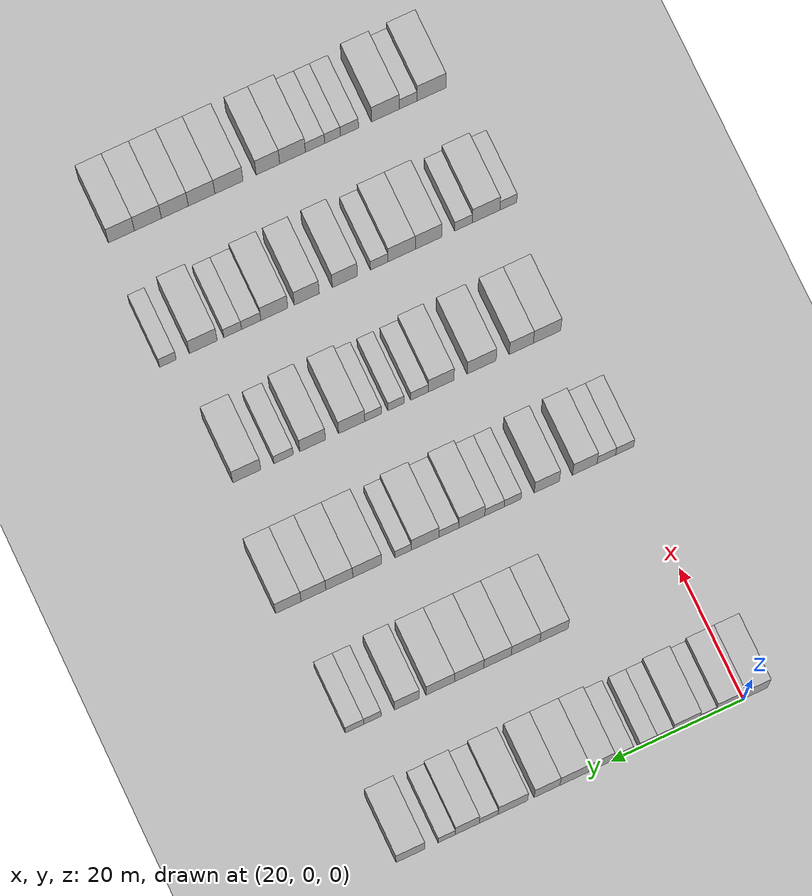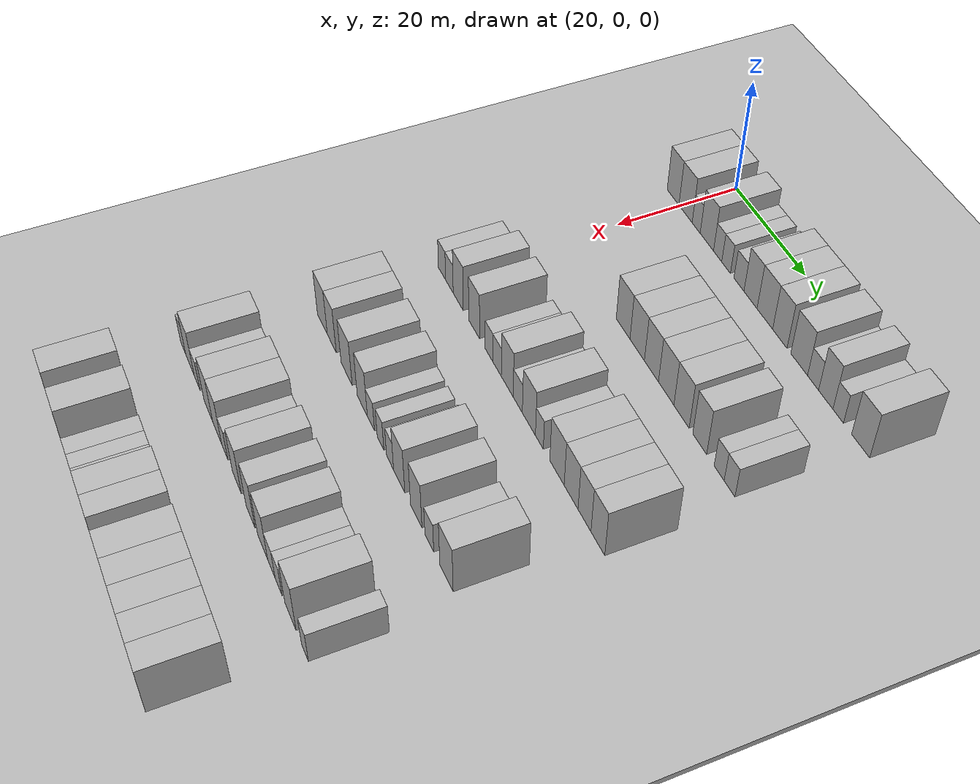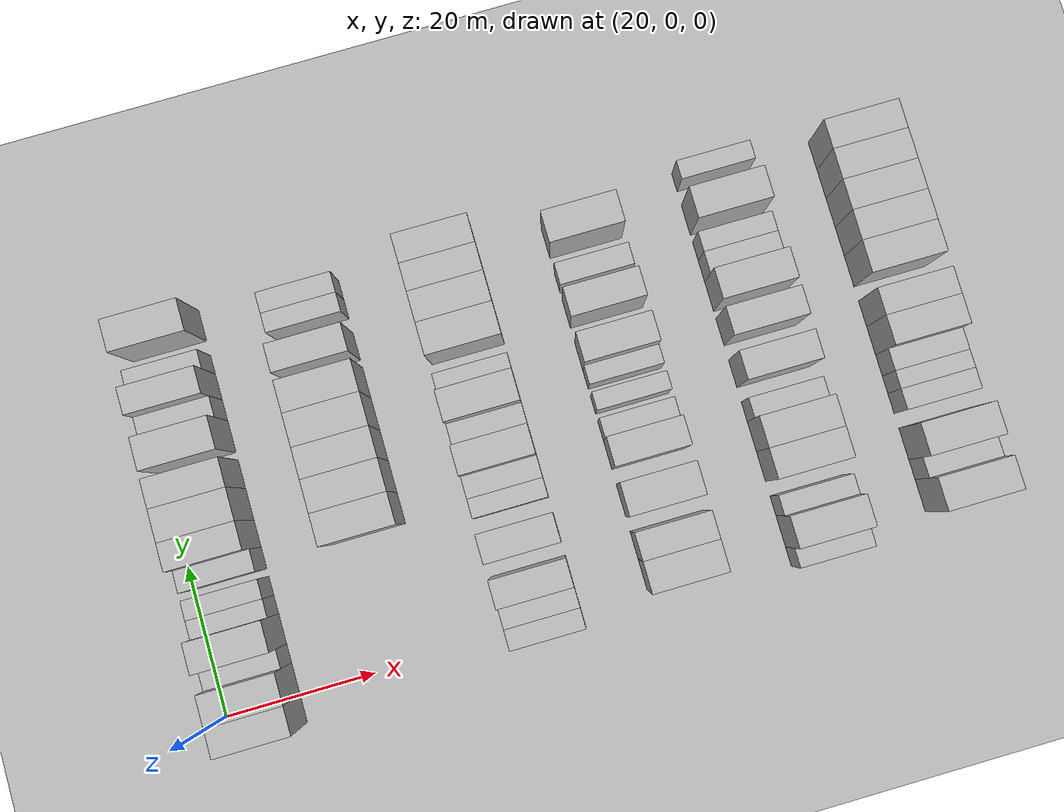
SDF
<sdf version="1.6">
 <world name="default">
  <include><name>ground_plane_1</name><uri>model://HANNAS_ground_plane</uri></include>
  <include>
   <name>ground_plane_2</name>
   <uri>model://HANNAS_ground_plane</uri>
   <pose>100 0 0  0 0 0</pose>
  </include>
  <model name="building_88">
   <static>1</static>
   <pose>25.0000 -1.7115 0 0.000000 0.000000 0.000000</pose>
   <link name="link">
    <pose>0 0 4.50 0 0 0</pose>
    <collision name="collision"><geometry><box><size>10.0000 3.7810 9.0000</size></box></geometry></collision>
    <visual name="visual">
     <cast_shadows>0</cast_shadows>
     <geometry><box><size>10.0000 3.7810 9.0000</size></box></geometry>
     <material>
      <script>
       <uri>model://HANNAS_wall/materials/scripts</uri>
       <uri>model://HANNAS_wall/materials/textures</uri>
       <name>vrc/HANNAS_wall</name>
      </script>
     </material>
    </visual>
   </link>
  </model>
  <model name="building_89">
   <static>1</static>
   <pose>25.0000 2.2634 0 0.000000 0.000000 0.000000</pose>
   <link name="link">
    <pose>0 0 4.50 0 0 0</pose>
    <collision name="collision"><geometry><box><size>10.0000 4.1690 9.0000</size></box></geometry></collision>
    <visual name="visual">
     <cast_shadows>0</cast_shadows>
     <geometry><box><size>10.0000 4.1690 9.0000</size></box></geometry>
     <material>
      <script>
       <uri>model://HANNAS_wall/materials/scripts</uri>
       <uri>model://HANNAS_wall/materials/textures</uri>
       <name>vrc/HANNAS_wall</name>
      </script>
     </material>
    </visual>
   </link>
  </model>
  <model name="building_90">
   <static>1</static>
   <pose>25.0000 5.5895 0 0.000000 0.000000 0.000000</pose>
   <link name="link">
    <pose>0 0 3.00 0 0 0</pose>
    <collision name="collision"><geometry><box><size>10.0000 2.4832 6.0000</size></box></geometry></collision>
    <visual name="visual">
     <cast_shadows>0</cast_shadows>
     <geometry><box><size>10.0000 2.4832 6.0000</size></box></geometry>
     <material>
      <script>
       <uri>model://HANNAS_wall/materials/scripts</uri>
       <uri>model://HANNAS_wall/materials/textures</uri>
       <name>vrc/HANNAS_wall</name>
      </script>
     </material>
    </visual>
   </link>
  </model>
  <model name="building_91">
   <static>1</static>
   <pose>25.0000 8.8632 0 0.000000 0.000000 0.000000</pose>
   <link name="link">
    <pose>0 0 4.50 0 0 0</pose>
    <collision name="collision"><geometry><box><size>10.0000 4.0643 9.0000</size></box></geometry></collision>
    <visual name="visual">
     <cast_shadows>0</cast_shadows>
     <geometry><box><size>10.0000 4.0643 9.0000</size></box></geometry>
     <material>
      <script>
       <uri>model://HANNAS_wall/materials/scripts</uri>
       <uri>model://HANNAS_wall/materials/textures</uri>
       <name>vrc/HANNAS_wall</name>
      </script>
     </material>
    </visual>
   </link>
  </model>
  <model name="building_92">
   <static>1</static>
   <pose>25.0000 12.1231 0 0.000000 0.000000 0.000000</pose>
   <link name="link">
    <pose>0 0 3.00 0 0 0</pose>
    <collision name="collision"><geometry><box><size>10.0000 2.4555 6.0000</size></box></geometry></collision>
    <visual name="visual">
     <cast_shadows>0</cast_shadows>
     <geometry><box><size>10.0000 2.4555 6.0000</size></box></geometry>
     <material>
      <script>
       <uri>model://HANNAS_wall/materials/scripts</uri>
       <uri>model://HANNAS_wall/materials/textures</uri>
       <name>vrc/HANNAS_wall</name>
      </script>
     </material>
    </visual>
   </link>
  </model>
  <model name="building_93">
   <static>1</static>
   <pose>25.0000 14.6333 0 0.000000 0.000000 0.000000</pose>
   <link name="link">
    <pose>0 0 3.00 0 0 0</pose>
    <collision name="collision"><geometry><box><size>10.0000 2.5648 6.0000</size></box></geometry></collision>
    <visual name="visual">
     <cast_shadows>0</cast_shadows>
     <geometry><box><size>10.0000 2.5648 6.0000</size></box></geometry>
     <material>
      <script>
       <uri>model://HANNAS_wall/materials/scripts</uri>
       <uri>model://HANNAS_wall/materials/textures</uri>
       <name>vrc/HANNAS_wall</name>
      </script>
     </material>
    </visual>
   </link>
  </model>
  <model name="building_94">
   <static>1</static>
   <pose>25.0000 18.3720 0 0.000000 0.000000 0.000000</pose>
   <link name="link">
    <pose>0 0 3.00 0 0 0</pose>
    <collision name="collision"><geometry><box><size>10.0000 2.9128 6.0000</size></box></geometry></collision>
    <visual name="visual">
     <cast_shadows>0</cast_shadows>
     <geometry><box><size>10.0000 2.9128 6.0000</size></box></geometry>
     <material>
      <script>
       <uri>model://HANNAS_wall/materials/scripts</uri>
       <uri>model://HANNAS_wall/materials/textures</uri>
       <name>vrc/HANNAS_wall</name>
      </script>
     </material>
    </visual>
   </link>
  </model>
  <model name="building_95">
   <static>1</static>
   <pose>25.0000 21.6835 0 0.000000 0.000000 0.000000</pose>
   <link name="link">
    <pose>0 0 4.50 0 0 0</pose>
    <collision name="collision"><geometry><box><size>10.0000 3.7102 9.0000</size></box></geometry></collision>
    <visual name="visual">
     <cast_shadows>0</cast_shadows>
     <geometry><box><size>10.0000 3.7102 9.0000</size></box></geometry>
     <material>
      <script>
       <uri>model://HANNAS_wall/materials/scripts</uri>
       <uri>model://HANNAS_wall/materials/textures</uri>
       <name>vrc/HANNAS_wall</name>
      </script>
     </material>
    </visual>
   </link>
  </model>
  <model name="building_96">
   <static>1</static>
   <pose>25.0000 25.7046 0 0.000000 0.000000 0.000000</pose>
   <link name="link">
    <pose>0 0 4.50 0 0 0</pose>
    <collision name="collision"><geometry><box><size>10.0000 4.3320 9.0000</size></box></geometry></collision>
    <visual name="visual">
     <cast_shadows>0</cast_shadows>
     <geometry><box><size>10.0000 4.3320 9.0000</size></box></geometry>
     <material>
      <script>
       <uri>model://HANNAS_wall/materials/scripts</uri>
       <uri>model://HANNAS_wall/materials/textures</uri>
       <name>vrc/HANNAS_wall</name>
      </script>
     </material>
    </visual>
   </link>
  </model>
  <model name="building_97">
   <static>1</static>
   <pose>25.0000 29.8140 0 0.000000 0.000000 0.000000</pose>
   <link name="link">
    <pose>0 0 4.50 0 0 0</pose>
    <collision name="collision"><geometry><box><size>10.0000 3.8866 9.0000</size></box></geometry></collision>
    <visual name="visual">
     <cast_shadows>0</cast_shadows>
     <geometry><box><size>10.0000 3.8866 9.0000</size></box></geometry>
     <material>
      <script>
       <uri>model://HANNAS_wall/materials/scripts</uri>
       <uri>model://HANNAS_wall/materials/textures</uri>
       <name>vrc/HANNAS_wall</name>
      </script>
     </material>
    </visual>
   </link>
  </model>
  <model name="building_98">
   <static>1</static>
   <pose>25.0000 34.9618 0 0.000000 0.000000 0.000000</pose>
   <link name="link">
    <pose>0 0 4.50 0 0 0</pose>
    <collision name="collision"><geometry><box><size>10.0000 4.4091 9.0000</size></box></geometry></collision>
    <visual name="visual">
     <cast_shadows>0</cast_shadows>
     <geometry><box><size>10.0000 4.4091 9.0000</size></box></geometry>
     <material>
      <script>
       <uri>model://HANNAS_wall/materials/scripts</uri>
       <uri>model://HANNAS_wall/materials/textures</uri>
       <name>vrc/HANNAS_wall</name>
      </script>
     </material>
    </visual>
   </link>
  </model>
  <model name="building_99">
   <static>1</static>
   <pose>25.0000 38.5921 0 0.000000 0.000000 0.000000</pose>
   <link name="link">
    <pose>0 0 3.00 0 0 0</pose>
    <collision name="collision"><geometry><box><size>10.0000 2.8514 6.0000</size></box></geometry></collision>
    <visual name="visual">
     <cast_shadows>0</cast_shadows>
     <geometry><box><size>10.0000 2.8514 6.0000</size></box></geometry>
     <material>
      <script>
       <uri>model://HANNAS_wall/materials/scripts</uri>
       <uri>model://HANNAS_wall/materials/textures</uri>
       <name>vrc/HANNAS_wall</name>
      </script>
     </material>
    </visual>
   </link>
  </model>
  <model name="building_100">
   <static>1</static>
   <pose>25.0000 41.8275 0 0.000000 0.000000 0.000000</pose>
   <link name="link">
    <pose>0 0 4.50 0 0 0</pose>
    <collision name="collision"><geometry><box><size>10.0000 3.6194 9.0000</size></box></geometry></collision>
    <visual name="visual">
     <cast_shadows>0</cast_shadows>
     <geometry><box><size>10.0000 3.6194 9.0000</size></box></geometry>
     <material>
      <script>
       <uri>model://HANNAS_wall/materials/scripts</uri>
       <uri>model://HANNAS_wall/materials/textures</uri>
       <name>vrc/HANNAS_wall</name>
      </script>
     </material>
    </visual>
   </link>
  </model>
  <model name="building_101">
   <static>1</static>
   <pose>25.0000 44.9341 0 0.000000 0.000000 0.000000</pose>
   <link name="link">
    <pose>0 0 3.00 0 0 0</pose>
    <collision name="collision"><geometry><box><size>10.0000 2.5939 6.0000</size></box></geometry></collision>
    <visual name="visual">
     <cast_shadows>0</cast_shadows>
     <geometry><box><size>10.0000 2.5939 6.0000</size></box></geometry>
     <material>
      <script>
       <uri>model://HANNAS_wall/materials/scripts</uri>
       <uri>model://HANNAS_wall/materials/textures</uri>
       <name>vrc/HANNAS_wall</name>
      </script>
     </material>
    </visual>
   </link>
  </model>
  <model name="building_102">
   <static>1</static>
   <pose>25.0000 50.3878 0 0.000000 0.000000 0.000000</pose>
   <link name="link">
    <pose>0 0 4.50 0 0 0</pose>
    <collision name="collision"><geometry><box><size>10.0000 4.3136 9.0000</size></box></geometry></collision>
    <visual name="visual">
     <cast_shadows>0</cast_shadows>
     <geometry><box><size>10.0000 4.3136 9.0000</size></box></geometry>
     <material>
      <script>
       <uri>model://HANNAS_wall/materials/scripts</uri>
       <uri>model://HANNAS_wall/materials/textures</uri>
       <name>vrc/HANNAS_wall</name>
      </script>
     </material>
    </visual>
   </link>
  </model>
  <model name="building_261">
   <static>1</static>
   <pose>44.0000 19.6958 0 0.000000 0.000000 0.000000</pose>
   <link name="link">
    <pose>0 0 4.50 0 0 0</pose>
    <collision name="collision"><geometry><box><size>10.0000 4.2618 9.0000</size></box></geometry></collision>
    <visual name="visual">
     <cast_shadows>0</cast_shadows>
     <geometry><box><size>10.0000 4.2618 9.0000</size></box></geometry>
     <material>
      <script>
       <uri>model://HANNAS_wall/materials/scripts</uri>
       <uri>model://HANNAS_wall/materials/textures</uri>
       <name>vrc/HANNAS_wall</name>
      </script>
     </material>
    </visual>
   </link>
  </model>
  <model name="building_262">
   <static>1</static>
   <pose>44.0000 24.0068 0 0.000000 0.000000 0.000000</pose>
   <link name="link">
    <pose>0 0 4.50 0 0 0</pose>
    <collision name="collision"><geometry><box><size>10.0000 4.3603 9.0000</size></box></geometry></collision>
    <visual name="visual">
     <cast_shadows>0</cast_shadows>
     <geometry><box><size>10.0000 4.3603 9.0000</size></box></geometry>
     <material>
      <script>
       <uri>model://HANNAS_wall/materials/scripts</uri>
       <uri>model://HANNAS_wall/materials/textures</uri>
       <name>vrc/HANNAS_wall</name>
      </script>
     </material>
    </visual>
   </link>
  </model>
  <model name="building_263">
   <static>1</static>
   <pose>44.0000 28.2641 0 0.000000 0.000000 0.000000</pose>
   <link name="link">
    <pose>0 0 4.50 0 0 0</pose>
    <collision name="collision"><geometry><box><size>10.0000 4.1543 9.0000</size></box></geometry></collision>
    <visual name="visual">
     <cast_shadows>0</cast_shadows>
     <geometry><box><size>10.0000 4.1543 9.0000</size></box></geometry>
     <material>
      <script>
       <uri>model://HANNAS_wall/materials/scripts</uri>
       <uri>model://HANNAS_wall/materials/textures</uri>
       <name>vrc/HANNAS_wall</name>
      </script>
     </material>
    </visual>
   </link>
  </model>
  <model name="building_264">
   <static>1</static>
   <pose>44.0000 32.5604 0 0.000000 0.000000 0.000000</pose>
   <link name="link">
    <pose>0 0 4.50 0 0 0</pose>
    <collision name="collision"><geometry><box><size>10.0000 4.4383 9.0000</size></box></geometry></collision>
    <visual name="visual">
     <cast_shadows>0</cast_shadows>
     <geometry><box><size>10.0000 4.4383 9.0000</size></box></geometry>
     <material>
      <script>
       <uri>model://HANNAS_wall/materials/scripts</uri>
       <uri>model://HANNAS_wall/materials/textures</uri>
       <name>vrc/HANNAS_wall</name>
      </script>
     </material>
    </visual>
   </link>
  </model>
  <model name="building_265">
   <static>1</static>
   <pose>44.0000 36.9218 0 0.000000 0.000000 0.000000</pose>
   <link name="link">
    <pose>0 0 4.50 0 0 0</pose>
    <collision name="collision"><geometry><box><size>10.0000 4.2845 9.0000</size></box></geometry></collision>
    <visual name="visual">
     <cast_shadows>0</cast_shadows>
     <geometry><box><size>10.0000 4.2845 9.0000</size></box></geometry>
     <material>
      <script>
       <uri>model://HANNAS_wall/materials/scripts</uri>
       <uri>model://HANNAS_wall/materials/textures</uri>
       <name>vrc/HANNAS_wall</name>
      </script>
     </material>
    </visual>
   </link>
  </model>
  <model name="building_266">
   <static>1</static>
   <pose>44.0000 41.9515 0 0.000000 0.000000 0.000000</pose>
   <link name="link">
    <pose>0 0 4.50 0 0 0</pose>
    <collision name="collision"><geometry><box><size>10.0000 3.7750 9.0000</size></box></geometry></collision>
    <visual name="visual">
     <cast_shadows>0</cast_shadows>
     <geometry><box><size>10.0000 3.7750 9.0000</size></box></geometry>
     <material>
      <script>
       <uri>model://HANNAS_wall/materials/scripts</uri>
       <uri>model://HANNAS_wall/materials/textures</uri>
       <name>vrc/HANNAS_wall</name>
      </script>
     </material>
    </visual>
   </link>
  </model>
  <model name="building_267">
   <static>1</static>
   <pose>44.0000 47.1544 0 0.000000 0.000000 0.000000</pose>
   <link name="link">
    <pose>0 0 3.00 0 0 0</pose>
    <collision name="collision"><geometry><box><size>10.0000 2.6306 6.0000</size></box></geometry></collision>
    <visual name="visual">
     <cast_shadows>0</cast_shadows>
     <geometry><box><size>10.0000 2.6306 6.0000</size></box></geometry>
     <material>
      <script>
       <uri>model://HANNAS_wall/materials/scripts</uri>
       <uri>model://HANNAS_wall/materials/textures</uri>
       <name>vrc/HANNAS_wall</name>
      </script>
     </material>
    </visual>
   </link>
  </model>
  <model name="building_268">
   <static>1</static>
   <pose>44.0000 49.8684 0 0.000000 0.000000 0.000000</pose>
   <link name="link">
    <pose>0 0 3.00 0 0 0</pose>
    <collision name="collision"><geometry><box><size>10.0000 2.7975 6.0000</size></box></geometry></collision>
    <visual name="visual">
     <cast_shadows>0</cast_shadows>
     <geometry><box><size>10.0000 2.7975 6.0000</size></box></geometry>
     <material>
      <script>
       <uri>model://HANNAS_wall/materials/scripts</uri>
       <uri>model://HANNAS_wall/materials/textures</uri>
       <name>vrc/HANNAS_wall</name>
      </script>
     </material>
    </visual>
   </link>
  </model>
  <model name="building_426">
   <static>1</static>
   <pose>63.0000 -0.1572 0 0.000000 0.000000 0.000000</pose>
   <link name="link">
    <pose>0 0 3.00 0 0 0</pose>
    <collision name="collision"><geometry><box><size>10.0000 2.7462 6.0000</size></box></geometry></collision>
    <visual name="visual">
     <cast_shadows>0</cast_shadows>
     <geometry><box><size>10.0000 2.7462 6.0000</size></box></geometry>
     <material>
      <script>
       <uri>model://HANNAS_wall/materials/scripts</uri>
       <uri>model://HANNAS_wall/materials/textures</uri>
       <name>vrc/HANNAS_wall</name>
      </script>
     </material>
    </visual>
   </link>
  </model>
  <model name="building_427">
   <static>1</static>
   <pose>63.0000 2.6445 0 0.000000 0.000000 0.000000</pose>
   <link name="link">
    <pose>0 0 3.00 0 0 0</pose>
    <collision name="collision"><geometry><box><size>10.0000 2.8571 6.0000</size></box></geometry></collision>
    <visual name="visual">
     <cast_shadows>0</cast_shadows>
     <geometry><box><size>10.0000 2.8571 6.0000</size></box></geometry>
     <material>
      <script>
       <uri>model://HANNAS_wall/materials/scripts</uri>
       <uri>model://HANNAS_wall/materials/textures</uri>
       <name>vrc/HANNAS_wall</name>
      </script>
     </material>
    </visual>
   </link>
  </model>
  <model name="building_428">
   <static>1</static>
   <pose>63.0000 5.9361 0 0.000000 0.000000 0.000000</pose>
   <link name="link">
    <pose>0 0 4.50 0 0 0</pose>
    <collision name="collision"><geometry><box><size>10.0000 3.7262 9.0000</size></box></geometry></collision>
    <visual name="visual">
     <cast_shadows>0</cast_shadows>
     <geometry><box><size>10.0000 3.7262 9.0000</size></box></geometry>
     <material>
      <script>
       <uri>model://HANNAS_wall/materials/scripts</uri>
       <uri>model://HANNAS_wall/materials/textures</uri>
       <name>vrc/HANNAS_wall</name>
      </script>
     </material>
    </visual>
   </link>
  </model>
  <model name="building_429">
   <static>1</static>
   <pose>63.0000 11.7188 0 0.000000 0.000000 0.000000</pose>
   <link name="link">
    <pose>0 0 4.50 0 0 0</pose>
    <collision name="collision"><geometry><box><size>10.0000 3.8391 9.0000</size></box></geometry></collision>
    <visual name="visual">
     <cast_shadows>0</cast_shadows>
     <geometry><box><size>10.0000 3.8391 9.0000</size></box></geometry>
     <material>
      <script>
       <uri>model://HANNAS_wall/materials/scripts</uri>
       <uri>model://HANNAS_wall/materials/textures</uri>
       <name>vrc/HANNAS_wall</name>
      </script>
     </material>
    </visual>
   </link>
  </model>
  <model name="building_430">
   <static>1</static>
   <pose>63.0000 16.9262 0 0.000000 0.000000 0.000000</pose>
   <link name="link">
    <pose>0 0 3.00 0 0 0</pose>
    <collision name="collision"><geometry><box><size>10.0000 2.5759 6.0000</size></box></geometry></collision>
    <visual name="visual">
     <cast_shadows>0</cast_shadows>
     <geometry><box><size>10.0000 2.5759 6.0000</size></box></geometry>
     <material>
      <script>
       <uri>model://HANNAS_wall/materials/scripts</uri>
       <uri>model://HANNAS_wall/materials/textures</uri>
       <name>vrc/HANNAS_wall</name>
      </script>
     </material>
    </visual>
   </link>
  </model>
  <model name="building_431">
   <static>1</static>
   <pose>63.0000 19.6938 0 0.000000 0.000000 0.000000</pose>
   <link name="link">
    <pose>0 0 3.00 0 0 0</pose>
    <collision name="collision"><geometry><box><size>10.0000 2.9593 6.0000</size></box></geometry></collision>
    <visual name="visual">
     <cast_shadows>0</cast_shadows>
     <geometry><box><size>10.0000 2.9593 6.0000</size></box></geometry>
     <material>
      <script>
       <uri>model://HANNAS_wall/materials/scripts</uri>
       <uri>model://HANNAS_wall/materials/textures</uri>
       <name>vrc/HANNAS_wall</name>
      </script>
     </material>
    </visual>
   </link>
  </model>
  <model name="building_432">
   <static>1</static>
   <pose>63.0000 23.1576 0 0.000000 0.000000 0.000000</pose>
   <link name="link">
    <pose>0 0 4.50 0 0 0</pose>
    <collision name="collision"><geometry><box><size>10.0000 3.9681 9.0000</size></box></geometry></collision>
    <visual name="visual">
     <cast_shadows>0</cast_shadows>
     <geometry><box><size>10.0000 3.9681 9.0000</size></box></geometry>
     <material>
      <script>
       <uri>model://HANNAS_wall/materials/scripts</uri>
       <uri>model://HANNAS_wall/materials/textures</uri>
       <name>vrc/HANNAS_wall</name>
      </script>
     </material>
    </visual>
   </link>
  </model>
  <model name="building_433">
   <static>1</static>
   <pose>63.0000 26.6401 0 0.000000 0.000000 0.000000</pose>
   <link name="link">
    <pose>0 0 3.00 0 0 0</pose>
    <collision name="collision"><geometry><box><size>10.0000 2.9971 6.0000</size></box></geometry></collision>
    <visual name="visual">
     <cast_shadows>0</cast_shadows>
     <geometry><box><size>10.0000 2.9971 6.0000</size></box></geometry>
     <material>
      <script>
       <uri>model://HANNAS_wall/materials/scripts</uri>
       <uri>model://HANNAS_wall/materials/textures</uri>
       <name>vrc/HANNAS_wall</name>
      </script>
     </material>
    </visual>
   </link>
  </model>
  <model name="building_434">
   <static>1</static>
   <pose>63.0000 30.2390 0 0.000000 0.000000 0.000000</pose>
   <link name="link">
    <pose>0 0 4.50 0 0 0</pose>
    <collision name="collision"><geometry><box><size>10.0000 4.2007 9.0000</size></box></geometry></collision>
    <visual name="visual">
     <cast_shadows>0</cast_shadows>
     <geometry><box><size>10.0000 4.2007 9.0000</size></box></geometry>
     <material>
      <script>
       <uri>model://HANNAS_wall/materials/scripts</uri>
       <uri>model://HANNAS_wall/materials/textures</uri>
       <name>vrc/HANNAS_wall</name>
      </script>
     </material>
    </visual>
   </link>
  </model>
  <model name="building_435">
   <static>1</static>
   <pose>63.0000 33.5838 0 0.000000 0.000000 0.000000</pose>
   <link name="link">
    <pose>0 0 3.00 0 0 0</pose>
    <collision name="collision"><geometry><box><size>10.0000 2.4888 6.0000</size></box></geometry></collision>
    <visual name="visual">
     <cast_shadows>0</cast_shadows>
     <geometry><box><size>10.0000 2.4888 6.0000</size></box></geometry>
     <material>
      <script>
       <uri>model://HANNAS_wall/materials/scripts</uri>
       <uri>model://HANNAS_wall/materials/textures</uri>
       <name>vrc/HANNAS_wall</name>
      </script>
     </material>
    </visual>
   </link>
  </model>
  <model name="building_436">
   <static>1</static>
   <pose>63.0000 39.0112 0 0.000000 0.000000 0.000000</pose>
   <link name="link">
    <pose>0 0 4.50 0 0 0</pose>
    <collision name="collision"><geometry><box><size>10.0000 4.3659 9.0000</size></box></geometry></collision>
    <visual name="visual">
     <cast_shadows>0</cast_shadows>
     <geometry><box><size>10.0000 4.3659 9.0000</size></box></geometry>
     <material>
      <script>
       <uri>model://HANNAS_wall/materials/scripts</uri>
       <uri>model://HANNAS_wall/materials/textures</uri>
       <name>vrc/HANNAS_wall</name>
      </script>
     </material>
    </visual>
   </link>
  </model>
  <model name="building_437">
   <static>1</static>
   <pose>63.0000 43.2442 0 0.000000 0.000000 0.000000</pose>
   <link name="link">
    <pose>0 0 4.50 0 0 0</pose>
    <collision name="collision"><geometry><box><size>10.0000 4.1002 9.0000</size></box></geometry></collision>
    <visual name="visual">
     <cast_shadows>0</cast_shadows>
     <geometry><box><size>10.0000 4.1002 9.0000</size></box></geometry>
     <material>
      <script>
       <uri>model://HANNAS_wall/materials/scripts</uri>
       <uri>model://HANNAS_wall/materials/textures</uri>
       <name>vrc/HANNAS_wall</name>
      </script>
     </material>
    </visual>
   </link>
  </model>
  <model name="building_438">
   <static>1</static>
   <pose>63.0000 47.1596 0 0.000000 0.000000 0.000000</pose>
   <link name="link">
    <pose>0 0 4.50 0 0 0</pose>
    <collision name="collision"><geometry><box><size>10.0000 3.7305 9.0000</size></box></geometry></collision>
    <visual name="visual">
     <cast_shadows>0</cast_shadows>
     <geometry><box><size>10.0000 3.7305 9.0000</size></box></geometry>
     <material>
      <script>
       <uri>model://HANNAS_wall/materials/scripts</uri>
       <uri>model://HANNAS_wall/materials/textures</uri>
       <name>vrc/HANNAS_wall</name>
      </script>
     </material>
    </visual>
   </link>
  </model>
  <model name="building_439">
   <static>1</static>
   <pose>63.0000 50.9722 0 0.000000 0.000000 0.000000</pose>
   <link name="link">
    <pose>0 0 4.50 0 0 0</pose>
    <collision name="collision"><geometry><box><size>10.0000 3.8948 9.0000</size></box></geometry></collision>
    <visual name="visual">
     <cast_shadows>0</cast_shadows>
     <geometry><box><size>10.0000 3.8948 9.0000</size></box></geometry>
     <material>
      <script>
       <uri>model://HANNAS_wall/materials/scripts</uri>
       <uri>model://HANNAS_wall/materials/textures</uri>
       <name>vrc/HANNAS_wall</name>
      </script>
     </material>
    </visual>
   </link>
  </model>
  <model name="building_606">
   <static>1</static>
   <pose>82.0000 2.6259 0 0.000000 0.000000 0.000000</pose>
   <link name="link">
    <pose>0 0 4.50 0 0 0</pose>
    <collision name="collision"><geometry><box><size>10.0000 4.1843 9.0000</size></box></geometry></collision>
    <visual name="visual">
     <cast_shadows>0</cast_shadows>
     <geometry><box><size>10.0000 4.1843 9.0000</size></box></geometry>
     <material>
      <script>
       <uri>model://HANNAS_wall/materials/scripts</uri>
       <uri>model://HANNAS_wall/materials/textures</uri>
       <name>vrc/HANNAS_wall</name>
      </script>
     </material>
    </visual>
   </link>
  </model>
  <model name="building_607">
   <static>1</static>
   <pose>82.0000 6.5677 0 0.000000 0.000000 0.000000</pose>
   <link name="link">
    <pose>0 0 4.50 0 0 0</pose>
    <collision name="collision"><geometry><box><size>10.0000 3.6992 9.0000</size></box></geometry></collision>
    <visual name="visual">
     <cast_shadows>0</cast_shadows>
     <geometry><box><size>10.0000 3.6992 9.0000</size></box></geometry>
     <material>
      <script>
       <uri>model://HANNAS_wall/materials/scripts</uri>
       <uri>model://HANNAS_wall/materials/textures</uri>
       <name>vrc/HANNAS_wall</name>
      </script>
     </material>
    </visual>
   </link>
  </model>
  <model name="building_608">
   <static>1</static>
   <pose>82.0000 12.6312 0 0.000000 0.000000 0.000000</pose>
   <link name="link">
    <pose>0 0 4.50 0 0 0</pose>
    <collision name="collision"><geometry><box><size>10.0000 4.4278 9.0000</size></box></geometry></collision>
    <visual name="visual">
     <cast_shadows>0</cast_shadows>
     <geometry><box><size>10.0000 4.4278 9.0000</size></box></geometry>
     <material>
      <script>
       <uri>model://HANNAS_wall/materials/scripts</uri>
       <uri>model://HANNAS_wall/materials/textures</uri>
       <name>vrc/HANNAS_wall</name>
      </script>
     </material>
    </visual>
   </link>
  </model>
  <model name="building_609">
   <static>1</static>
   <pose>82.0000 18.7932 0 0.000000 0.000000 0.000000</pose>
   <link name="link">
    <pose>0 0 4.50 0 0 0</pose>
    <collision name="collision"><geometry><box><size>10.0000 3.8962 9.0000</size></box></geometry></collision>
    <visual name="visual">
     <cast_shadows>0</cast_shadows>
     <geometry><box><size>10.0000 3.8962 9.0000</size></box></geometry>
     <material>
      <script>
       <uri>model://HANNAS_wall/materials/scripts</uri>
       <uri>model://HANNAS_wall/materials/textures</uri>
       <name>vrc/HANNAS_wall</name>
      </script>
     </material>
    </visual>
   </link>
  </model>
  <model name="building_610">
   <static>1</static>
   <pose>82.0000 22.0997 0 0.000000 0.000000 0.000000</pose>
   <link name="link">
    <pose>0 0 3.00 0 0 0</pose>
    <collision name="collision"><geometry><box><size>10.0000 2.7167 6.0000</size></box></geometry></collision>
    <visual name="visual">
     <cast_shadows>0</cast_shadows>
     <geometry><box><size>10.0000 2.7167 6.0000</size></box></geometry>
     <material>
      <script>
       <uri>model://HANNAS_wall/materials/scripts</uri>
       <uri>model://HANNAS_wall/materials/textures</uri>
       <name>vrc/HANNAS_wall</name>
      </script>
     </material>
    </visual>
   </link>
  </model>
  <model name="building_611">
   <static>1</static>
   <pose>82.0000 25.6938 0 0.000000 0.000000 0.000000</pose>
   <link name="link">
    <pose>0 0 3.00 0 0 0</pose>
    <collision name="collision"><geometry><box><size>10.0000 2.4716 6.0000</size></box></geometry></collision>
    <visual name="visual">
     <cast_shadows>0</cast_shadows>
     <geometry><box><size>10.0000 2.4716 6.0000</size></box></geometry>
     <material>
      <script>
       <uri>model://HANNAS_wall/materials/scripts</uri>
       <uri>model://HANNAS_wall/materials/textures</uri>
       <name>vrc/HANNAS_wall</name>
      </script>
     </material>
    </visual>
   </link>
  </model>
  <model name="building_612">
   <static>1</static>
   <pose>82.0000 29.1960 0 0.000000 0.000000 0.000000</pose>
   <link name="link">
    <pose>0 0 3.00 0 0 0</pose>
    <collision name="collision"><geometry><box><size>10.0000 2.5328 6.0000</size></box></geometry></collision>
    <visual name="visual">
     <cast_shadows>0</cast_shadows>
     <geometry><box><size>10.0000 2.5328 6.0000</size></box></geometry>
     <material>
      <script>
       <uri>model://HANNAS_wall/materials/scripts</uri>
       <uri>model://HANNAS_wall/materials/textures</uri>
       <name>vrc/HANNAS_wall</name>
      </script>
     </material>
    </visual>
   </link>
  </model>
  <model name="building_613">
   <static>1</static>
   <pose>82.0000 32.4543 0 0.000000 0.000000 0.000000</pose>
   <link name="link">
    <pose>0 0 4.50 0 0 0</pose>
    <collision name="collision"><geometry><box><size>10.0000 3.9837 9.0000</size></box></geometry></collision>
    <visual name="visual">
     <cast_shadows>0</cast_shadows>
     <geometry><box><size>10.0000 3.9837 9.0000</size></box></geometry>
     <material>
      <script>
       <uri>model://HANNAS_wall/materials/scripts</uri>
       <uri>model://HANNAS_wall/materials/textures</uri>
       <name>vrc/HANNAS_wall</name>
      </script>
     </material>
    </visual>
   </link>
  </model>
  <model name="building_614">
   <static>1</static>
   <pose>82.0000 38.3970 0 0.000000 0.000000 0.000000</pose>
   <link name="link">
    <pose>0 0 4.50 0 0 0</pose>
    <collision name="collision"><geometry><box><size>10.0000 3.9017 9.0000</size></box></geometry></collision>
    <visual name="visual">
     <cast_shadows>0</cast_shadows>
     <geometry><box><size>10.0000 3.9017 9.0000</size></box></geometry>
     <material>
      <script>
       <uri>model://HANNAS_wall/materials/scripts</uri>
       <uri>model://HANNAS_wall/materials/textures</uri>
       <name>vrc/HANNAS_wall</name>
      </script>
     </material>
    </visual>
   </link>
  </model>
  <model name="building_615">
   <static>1</static>
   <pose>82.0000 42.8151 0 0.000000 0.000000 0.000000</pose>
   <link name="link">
    <pose>0 0 3.00 0 0 0</pose>
    <collision name="collision"><geometry><box><size>10.0000 2.9345 6.0000</size></box></geometry></collision>
    <visual name="visual">
     <cast_shadows>0</cast_shadows>
     <geometry><box><size>10.0000 2.9345 6.0000</size></box></geometry>
     <material>
      <script>
       <uri>model://HANNAS_wall/materials/scripts</uri>
       <uri>model://HANNAS_wall/materials/textures</uri>
       <name>vrc/HANNAS_wall</name>
      </script>
     </material>
    </visual>
   </link>
  </model>
  <model name="building_616">
   <static>1</static>
   <pose>82.0000 48.4121 0 0.000000 0.000000 0.000000</pose>
   <link name="link">
    <pose>0 0 4.50 0 0 0</pose>
    <collision name="collision"><geometry><box><size>10.0000 4.2595 9.0000</size></box></geometry></collision>
    <visual name="visual">
     <cast_shadows>0</cast_shadows>
     <geometry><box><size>10.0000 4.2595 9.0000</size></box></geometry>
     <material>
      <script>
       <uri>model://HANNAS_wall/materials/scripts</uri>
       <uri>model://HANNAS_wall/materials/textures</uri>
       <name>vrc/HANNAS_wall</name>
      </script>
     </material>
    </visual>
   </link>
  </model>
  <model name="building_779">
   <static>1</static>
   <pose>101.0000 -0.4830 0 0.000000 0.000000 0.000000</pose>
   <link name="link">
    <pose>0 0 3.00 0 0 0</pose>
    <collision name="collision"><geometry><box><size>10.0000 2.5944 6.0000</size></box></geometry></collision>
    <visual name="visual">
     <cast_shadows>0</cast_shadows>
     <geometry><box><size>10.0000 2.5944 6.0000</size></box></geometry>
     <material>
      <script>
       <uri>model://HANNAS_wall/materials/scripts</uri>
       <uri>model://HANNAS_wall/materials/textures</uri>
       <name>vrc/HANNAS_wall</name>
      </script>
     </material>
    </visual>
   </link>
  </model>
  <model name="building_780">
   <static>1</static>
   <pose>101.0000 2.9300 0 0.000000 0.000000 0.000000</pose>
   <link name="link">
    <pose>0 0 4.50 0 0 0</pose>
    <collision name="collision"><geometry><box><size>10.0000 4.2316 9.0000</size></box></geometry></collision>
    <visual name="visual">
     <cast_shadows>0</cast_shadows>
     <geometry><box><size>10.0000 4.2316 9.0000</size></box></geometry>
     <material>
      <script>
       <uri>model://HANNAS_wall/materials/scripts</uri>
       <uri>model://HANNAS_wall/materials/textures</uri>
       <name>vrc/HANNAS_wall</name>
      </script>
     </material>
    </visual>
   </link>
  </model>
  <model name="building_781">
   <static>1</static>
   <pose>101.0000 6.3962 0 0.000000 0.000000 0.000000</pose>
   <link name="link">
    <pose>0 0 3.00 0 0 0</pose>
    <collision name="collision"><geometry><box><size>10.0000 2.7008 6.0000</size></box></geometry></collision>
    <visual name="visual">
     <cast_shadows>0</cast_shadows>
     <geometry><box><size>10.0000 2.7008 6.0000</size></box></geometry>
     <material>
      <script>
       <uri>model://HANNAS_wall/materials/scripts</uri>
       <uri>model://HANNAS_wall/materials/textures</uri>
       <name>vrc/HANNAS_wall</name>
      </script>
     </material>
    </visual>
   </link>
  </model>
  <model name="building_782">
   <static>1</static>
   <pose>101.0000 11.7683 0 0.000000 0.000000 0.000000</pose>
   <link name="link">
    <pose>0 0 4.50 0 0 0</pose>
    <collision name="collision"><geometry><box><size>10.0000 4.0434 9.0000</size></box></geometry></collision>
    <visual name="visual">
     <cast_shadows>0</cast_shadows>
     <geometry><box><size>10.0000 4.0434 9.0000</size></box></geometry>
     <material>
      <script>
       <uri>model://HANNAS_wall/materials/scripts</uri>
       <uri>model://HANNAS_wall/materials/textures</uri>
       <name>vrc/HANNAS_wall</name>
      </script>
     </material>
    </visual>
   </link>
  </model>
  <model name="building_783">
   <static>1</static>
   <pose>101.0000 15.8711 0 0.000000 0.000000 0.000000</pose>
   <link name="link">
    <pose>0 0 4.50 0 0 0</pose>
    <collision name="collision"><geometry><box><size>10.0000 4.1623 9.0000</size></box></geometry></collision>
    <visual name="visual">
     <cast_shadows>0</cast_shadows>
     <geometry><box><size>10.0000 4.1623 9.0000</size></box></geometry>
     <material>
      <script>
       <uri>model://HANNAS_wall/materials/scripts</uri>
       <uri>model://HANNAS_wall/materials/textures</uri>
       <name>vrc/HANNAS_wall</name>
      </script>
     </material>
    </visual>
   </link>
  </model>
  <model name="building_784">
   <static>1</static>
   <pose>101.0000 19.3075 0 0.000000 0.000000 0.000000</pose>
   <link name="link">
    <pose>0 0 3.00 0 0 0</pose>
    <collision name="collision"><geometry><box><size>10.0000 2.7104 6.0000</size></box></geometry></collision>
    <visual name="visual">
     <cast_shadows>0</cast_shadows>
     <geometry><box><size>10.0000 2.7104 6.0000</size></box></geometry>
     <material>
      <script>
       <uri>model://HANNAS_wall/materials/scripts</uri>
       <uri>model://HANNAS_wall/materials/textures</uri>
       <name>vrc/HANNAS_wall</name>
      </script>
     </material>
    </visual>
   </link>
  </model>
  <model name="building_785">
   <static>1</static>
   <pose>101.0000 24.5819 0 0.000000 0.000000 0.000000</pose>
   <link name="link">
    <pose>0 0 4.50 0 0 0</pose>
    <collision name="collision"><geometry><box><size>10.0000 3.8385 9.0000</size></box></geometry></collision>
    <visual name="visual">
     <cast_shadows>0</cast_shadows>
     <geometry><box><size>10.0000 3.8385 9.0000</size></box></geometry>
     <material>
      <script>
       <uri>model://HANNAS_wall/materials/scripts</uri>
       <uri>model://HANNAS_wall/materials/textures</uri>
       <name>vrc/HANNAS_wall</name>
      </script>
     </material>
    </visual>
   </link>
  </model>
  <model name="building_786">
   <static>1</static>
   <pose>101.0000 30.4067 0 0.000000 0.000000 0.000000</pose>
   <link name="link">
    <pose>0 0 4.50 0 0 0</pose>
    <collision name="collision"><geometry><box><size>10.0000 3.8112 9.0000</size></box></geometry></collision>
    <visual name="visual">
     <cast_shadows>0</cast_shadows>
     <geometry><box><size>10.0000 3.8112 9.0000</size></box></geometry>
     <material>
      <script>
       <uri>model://HANNAS_wall/materials/scripts</uri>
       <uri>model://HANNAS_wall/materials/textures</uri>
       <name>vrc/HANNAS_wall</name>
      </script>
     </material>
    </visual>
   </link>
  </model>
  <model name="building_787">
   <static>1</static>
   <pose>101.0000 35.3633 0 0.000000 0.000000 0.000000</pose>
   <link name="link">
    <pose>0 0 4.50 0 0 0</pose>
    <collision name="collision"><geometry><box><size>10.0000 4.1019 9.0000</size></box></geometry></collision>
    <visual name="visual">
     <cast_shadows>0</cast_shadows>
     <geometry><box><size>10.0000 4.1019 9.0000</size></box></geometry>
     <material>
      <script>
       <uri>model://HANNAS_wall/materials/scripts</uri>
       <uri>model://HANNAS_wall/materials/textures</uri>
       <name>vrc/HANNAS_wall</name>
      </script>
     </material>
    </visual>
   </link>
  </model>
  <model name="building_788">
   <static>1</static>
   <pose>101.0000 38.8934 0 0.000000 0.000000 0.000000</pose>
   <link name="link">
    <pose>0 0 3.00 0 0 0</pose>
    <collision name="collision"><geometry><box><size>10.0000 2.9583 6.0000</size></box></geometry></collision>
    <visual name="visual">
     <cast_shadows>0</cast_shadows>
     <geometry><box><size>10.0000 2.9583 6.0000</size></box></geometry>
     <material>
      <script>
       <uri>model://HANNAS_wall/materials/scripts</uri>
       <uri>model://HANNAS_wall/materials/textures</uri>
       <name>vrc/HANNAS_wall</name>
      </script>
     </material>
    </visual>
   </link>
  </model>
  <model name="building_789">
   <static>1</static>
   <pose>101.0000 41.7260 0 0.000000 0.000000 0.000000</pose>
   <link name="link">
    <pose>0 0 3.00 0 0 0</pose>
    <collision name="collision"><geometry><box><size>10.0000 2.7069 6.0000</size></box></geometry></collision>
    <visual name="visual">
     <cast_shadows>0</cast_shadows>
     <geometry><box><size>10.0000 2.7069 6.0000</size></box></geometry>
     <material>
      <script>
       <uri>model://HANNAS_wall/materials/scripts</uri>
       <uri>model://HANNAS_wall/materials/textures</uri>
       <name>vrc/HANNAS_wall</name>
      </script>
     </material>
    </visual>
   </link>
  </model>
  <model name="building_790">
   <static>1</static>
   <pose>101.0000 46.2037 0 0.000000 0.000000 0.000000</pose>
   <link name="link">
    <pose>0 0 4.50 0 0 0</pose>
    <collision name="collision"><geometry><box><size>10.0000 4.2485 9.0000</size></box></geometry></collision>
    <visual name="visual">
     <cast_shadows>0</cast_shadows>
     <geometry><box><size>10.0000 4.2485 9.0000</size></box></geometry>
     <material>
      <script>
       <uri>model://HANNAS_wall/materials/scripts</uri>
       <uri>model://HANNAS_wall/materials/textures</uri>
       <name>vrc/HANNAS_wall</name>
      </script>
     </material>
    </visual>
   </link>
  </model>
  <model name="building_791">
   <static>1</static>
   <pose>101.0000 51.5922 0 0.000000 0.000000 0.000000</pose>
   <link name="link">
    <pose>0 0 3.00 0 0 0</pose>
    <collision name="collision"><geometry><box><size>10.0000 2.5285 6.0000</size></box></geometry></collision>
    <visual name="visual">
     <cast_shadows>0</cast_shadows>
     <geometry><box><size>10.0000 2.5285 6.0000</size></box></geometry>
     <material>
      <script>
       <uri>model://HANNAS_wall/materials/scripts</uri>
       <uri>model://HANNAS_wall/materials/textures</uri>
       <name>vrc/HANNAS_wall</name>
      </script>
     </material>
    </visual>
   </link>
  </model>
  <model name="building_958">
   <static>1</static>
   <pose>120.0000 2.3247 0 0.000000 0.000000 0.000000</pose>
   <link name="link">
    <pose>0 0 4.50 0 0 0</pose>
    <collision name="collision"><geometry><box><size>10.0000 4.4005 9.0000</size></box></geometry></collision>
    <visual name="visual">
     <cast_shadows>0</cast_shadows>
     <geometry><box><size>10.0000 4.4005 9.0000</size></box></geometry>
     <material>
      <script>
       <uri>model://HANNAS_wall/materials/scripts</uri>
       <uri>model://HANNAS_wall/materials/textures</uri>
       <name>vrc/HANNAS_wall</name>
      </script>
     </material>
    </visual>
   </link>
  </model>
  <model name="building_959">
   <static>1</static>
   <pose>120.0000 5.8945 0 0.000000 0.000000 0.000000</pose>
   <link name="link">
    <pose>0 0 3.00 0 0 0</pose>
    <collision name="collision"><geometry><box><size>10.0000 2.7392 6.0000</size></box></geometry></collision>
    <visual name="visual">
     <cast_shadows>0</cast_shadows>
     <geometry><box><size>10.0000 2.7392 6.0000</size></box></geometry>
     <material>
      <script>
       <uri>model://HANNAS_wall/materials/scripts</uri>
       <uri>model://HANNAS_wall/materials/textures</uri>
       <name>vrc/HANNAS_wall</name>
      </script>
     </material>
    </visual>
   </link>
  </model>
  <model name="building_960">
   <static>1</static>
   <pose>120.0000 9.4152 0 0.000000 0.000000 0.000000</pose>
   <link name="link">
    <pose>0 0 4.50 0 0 0</pose>
    <collision name="collision"><geometry><box><size>10.0000 4.3022 9.0000</size></box></geometry></collision>
    <visual name="visual">
     <cast_shadows>0</cast_shadows>
     <geometry><box><size>10.0000 4.3022 9.0000</size></box></geometry>
     <material>
      <script>
       <uri>model://HANNAS_wall/materials/scripts</uri>
       <uri>model://HANNAS_wall/materials/textures</uri>
       <name>vrc/HANNAS_wall</name>
      </script>
     </material>
    </visual>
   </link>
  </model>
  <model name="building_961">
   <static>1</static>
   <pose>120.0000 14.9660 0 0.000000 0.000000 0.000000</pose>
   <link name="link">
    <pose>0 0 3.00 0 0 0</pose>
    <collision name="collision"><geometry><box><size>10.0000 2.7993 6.0000</size></box></geometry></collision>
    <visual name="visual">
     <cast_shadows>0</cast_shadows>
     <geometry><box><size>10.0000 2.7993 6.0000</size></box></geometry>
     <material>
      <script>
       <uri>model://HANNAS_wall/materials/scripts</uri>
       <uri>model://HANNAS_wall/materials/textures</uri>
       <name>vrc/HANNAS_wall</name>
      </script>
     </material>
    </visual>
   </link>
  </model>
  <model name="building_962">
   <static>1</static>
   <pose>120.0000 17.5721 0 0.000000 0.000000 0.000000</pose>
   <link name="link">
    <pose>0 0 3.00 0 0 0</pose>
    <collision name="collision"><geometry><box><size>10.0000 2.4129 6.0000</size></box></geometry></collision>
    <visual name="visual">
     <cast_shadows>0</cast_shadows>
     <geometry><box><size>10.0000 2.4129 6.0000</size></box></geometry>
     <material>
      <script>
       <uri>model://HANNAS_wall/materials/scripts</uri>
       <uri>model://HANNAS_wall/materials/textures</uri>
       <name>vrc/HANNAS_wall</name>
      </script>
     </material>
    </visual>
   </link>
  </model>
  <model name="building_963">
   <static>1</static>
   <pose>120.0000 20.2619 0 0.000000 0.000000 0.000000</pose>
   <link name="link">
    <pose>0 0 3.00 0 0 0</pose>
    <collision name="collision"><geometry><box><size>10.0000 2.9669 6.0000</size></box></geometry></collision>
    <visual name="visual">
     <cast_shadows>0</cast_shadows>
     <geometry><box><size>10.0000 2.9669 6.0000</size></box></geometry>
     <material>
      <script>
       <uri>model://HANNAS_wall/materials/scripts</uri>
       <uri>model://HANNAS_wall/materials/textures</uri>
       <name>vrc/HANNAS_wall</name>
      </script>
     </material>
    </visual>
   </link>
  </model>
  <model name="building_964">
   <static>1</static>
   <pose>120.0000 23.7169 0 0.000000 0.000000 0.000000</pose>
   <link name="link">
    <pose>0 0 4.50 0 0 0</pose>
    <collision name="collision"><geometry><box><size>10.0000 3.9430 9.0000</size></box></geometry></collision>
    <visual name="visual">
     <cast_shadows>0</cast_shadows>
     <geometry><box><size>10.0000 3.9430 9.0000</size></box></geometry>
     <material>
      <script>
       <uri>model://HANNAS_wall/materials/scripts</uri>
       <uri>model://HANNAS_wall/materials/textures</uri>
       <name>vrc/HANNAS_wall</name>
      </script>
     </material>
    </visual>
   </link>
  </model>
  <model name="building_965">
   <static>1</static>
   <pose>120.0000 27.4966 0 0.000000 0.000000 0.000000</pose>
   <link name="link">
    <pose>0 0 4.50 0 0 0</pose>
    <collision name="collision"><geometry><box><size>10.0000 3.6163 9.0000</size></box></geometry></collision>
    <visual name="visual">
     <cast_shadows>0</cast_shadows>
     <geometry><box><size>10.0000 3.6163 9.0000</size></box></geometry>
     <material>
      <script>
       <uri>model://HANNAS_wall/materials/scripts</uri>
       <uri>model://HANNAS_wall/materials/textures</uri>
       <name>vrc/HANNAS_wall</name>
      </script>
     </material>
    </visual>
   </link>
  </model>
  <model name="building_966">
   <static>1</static>
   <pose>120.0000 33.4678 0 0.000000 0.000000 0.000000</pose>
   <link name="link">
    <pose>0 0 4.50 0 0 0</pose>
    <collision name="collision"><geometry><box><size>10.0000 4.3261 9.0000</size></box></geometry></collision>
    <visual name="visual">
     <cast_shadows>0</cast_shadows>
     <geometry><box><size>10.0000 4.3261 9.0000</size></box></geometry>
     <material>
      <script>
       <uri>model://HANNAS_wall/materials/scripts</uri>
       <uri>model://HANNAS_wall/materials/textures</uri>
       <name>vrc/HANNAS_wall</name>
      </script>
     </material>
    </visual>
   </link>
  </model>
  <model name="building_967">
   <static>1</static>
   <pose>120.0000 37.6632 0 0.000000 0.000000 0.000000</pose>
   <link name="link">
    <pose>0 0 4.50 0 0 0</pose>
    <collision name="collision"><geometry><box><size>10.0000 4.0646 9.0000</size></box></geometry></collision>
    <visual name="visual">
     <cast_shadows>0</cast_shadows>
     <geometry><box><size>10.0000 4.0646 9.0000</size></box></geometry>
     <material>
      <script>
       <uri>model://HANNAS_wall/materials/scripts</uri>
       <uri>model://HANNAS_wall/materials/textures</uri>
       <name>vrc/HANNAS_wall</name>
      </script>
     </material>
    </visual>
   </link>
  </model>
  <model name="building_968">
   <static>1</static>
   <pose>120.0000 41.7533 0 0.000000 0.000000 0.000000</pose>
   <link name="link">
    <pose>0 0 4.50 0 0 0</pose>
    <collision name="collision"><geometry><box><size>10.0000 4.1156 9.0000</size></box></geometry></collision>
    <visual name="visual">
     <cast_shadows>0</cast_shadows>
     <geometry><box><size>10.0000 4.1156 9.0000</size></box></geometry>
     <material>
      <script>
       <uri>model://HANNAS_wall/materials/scripts</uri>
       <uri>model://HANNAS_wall/materials/textures</uri>
       <name>vrc/HANNAS_wall</name>
      </script>
     </material>
    </visual>
   </link>
  </model>
  <model name="building_969">
   <static>1</static>
   <pose>120.0000 45.8723 0 0.000000 0.000000 0.000000</pose>
   <link name="link">
    <pose>0 0 4.50 0 0 0</pose>
    <collision name="collision"><geometry><box><size>10.0000 4.1225 9.0000</size></box></geometry></collision>
    <visual name="visual">
     <cast_shadows>0</cast_shadows>
     <geometry><box><size>10.0000 4.1225 9.0000</size></box></geometry>
     <material>
      <script>
       <uri>model://HANNAS_wall/materials/scripts</uri>
       <uri>model://HANNAS_wall/materials/textures</uri>
       <name>vrc/HANNAS_wall</name>
      </script>
     </material>
    </visual>
   </link>
  </model>
  <model name="building_970">
   <static>1</static>
   <pose>120.0000 49.9190 0 0.000000 0.000000 0.000000</pose>
   <link name="link">
    <pose>0 0 4.50 0 0 0</pose>
    <collision name="collision"><geometry><box><size>10.0000 3.9708 9.0000</size></box></geometry></collision>
    <visual name="visual">
     <cast_shadows>0</cast_shadows>
     <geometry><box><size>10.0000 3.9708 9.0000</size></box></geometry>
     <material>
      <script>
       <uri>model://HANNAS_wall/materials/scripts</uri>
       <uri>model://HANNAS_wall/materials/textures</uri>
       <name>vrc/HANNAS_wall</name>
      </script>
     </material>
    </visual>
   </link>
  </model>
 </world>
</sdf>
